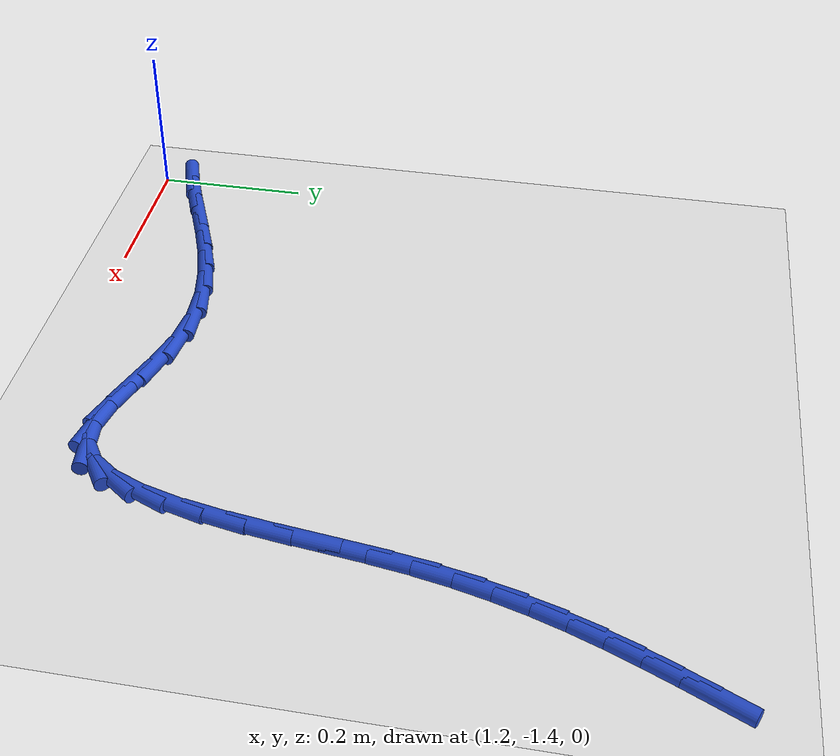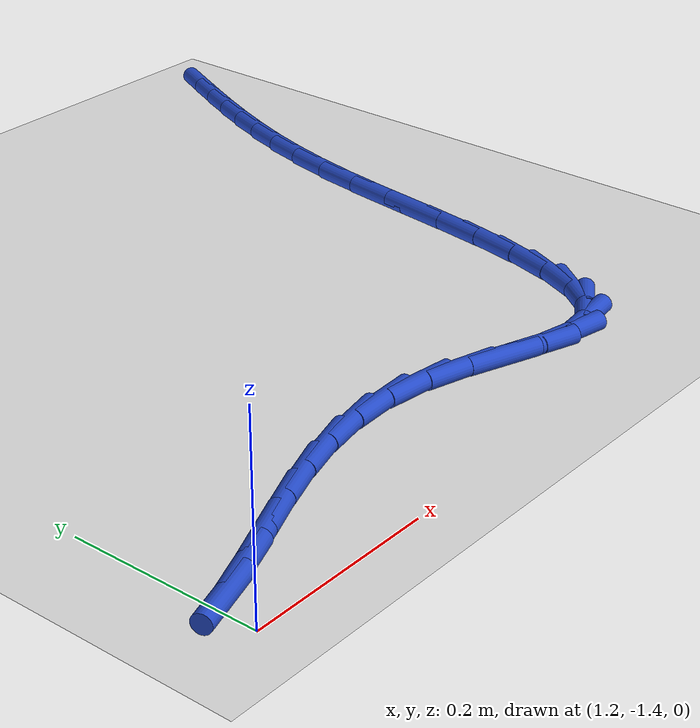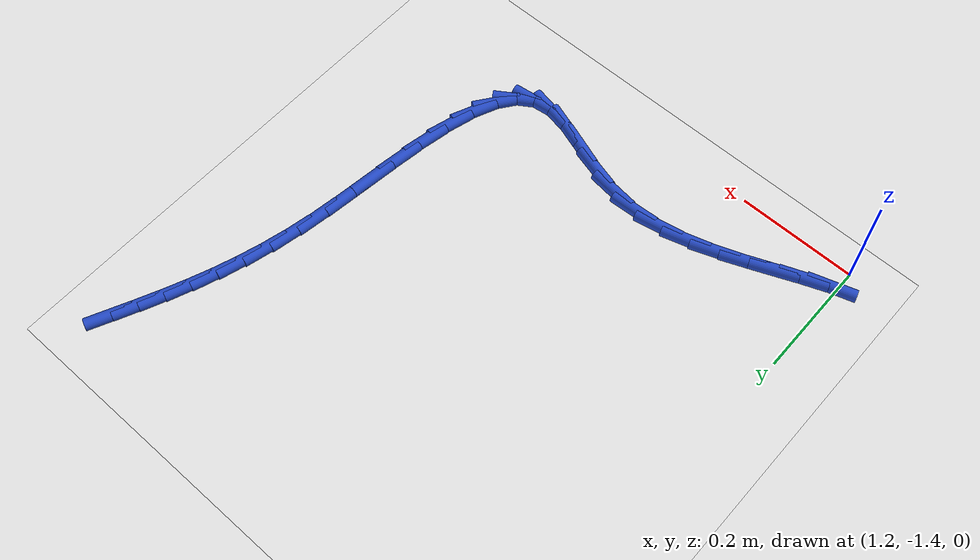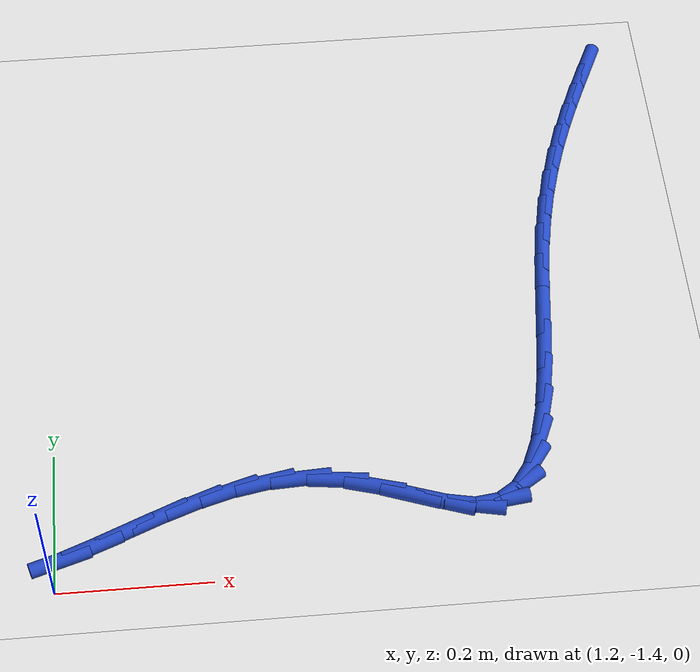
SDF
<sdf version="1.6">
 <world name="default">
  <model name="ground_plane">
   <static>1</static>
   <link name="link">
    <collision name="collision">
     <geometry><plane><normal>0 0 1</normal><size>100 100</size></plane></geometry>
     <surface><friction><ode><mu>100</mu><mu2>50</mu2></ode></friction></surface>
    </collision>
    <visual name="visual">
     <cast_shadows>0</cast_shadows>
     <geometry><plane><normal>0 0 1</normal><size>100 100</size></plane></geometry>
     <material>
      <script><uri>file://media/materials/scripts/gazebo.material</uri><name>Gazebo/WhiteGlow</name></script>
     </material>
    </visual>
   </link>
  </model>
  <model name="line">
   <link name="link_105">
    <pose>1.9931286481541601 -0.5921658225265114 0.01 0 1.57 1.1367173516193283</pose>
    <collision name="collision">
     <geometry><cylinder><radius>0.01</radius><length>0.08</length></cylinder></geometry>
    </collision>
    <visual name="visual">
     <material>
      <script><name>Gazebo/Blue</name><uri>file://media/materials/scripts/gazebo.material</uri></script>
     </material>
     <geometry><cylinder><radius>0.01</radius><length>0.08</length></cylinder></geometry>
    </visual>
   </link>
   <link name="link_106">
    <pose>1.975497254566834 -0.6301999904116558 0.01 0 1.57 1.1508856920942594</pose>
    <collision name="collision">
     <geometry><cylinder><radius>0.01</radius><length>0.08</length></cylinder></geometry>
    </collision>
    <visual name="visual">
     <material>
      <script><name>Gazebo/Blue</name><uri>file://media/materials/scripts/gazebo.material</uri></script>
     </material>
     <geometry><cylinder><radius>0.01</radius><length>0.08</length></cylinder></geometry>
    </visual>
   </link>
   <link name="link_107">
    <pose>1.9586170577549775 -0.6680085153173835 0.01 0 1.57 1.174559866336844</pose>
    <collision name="collision">
     <geometry><cylinder><radius>0.01</radius><length>0.08</length></cylinder></geometry>
    </collision>
    <visual name="visual">
     <material>
      <script><name>Gazebo/Blue</name><uri>file://media/materials/scripts/gazebo.material</uri></script>
     </material>
     <geometry><cylinder><radius>0.01</radius><length>0.08</length></cylinder></geometry>
    </visual>
   </link>
   <link name="link_108">
    <pose>1.9426364973639414 -0.7062062617686775 0.01 0 1.57 1.2068670798294112</pose>
    <collision name="collision">
     <geometry><cylinder><radius>0.01</radius><length>0.08</length></cylinder></geometry>
    </collision>
    <visual name="visual">
     <material>
      <script><name>Gazebo/Blue</name><uri>file://media/materials/scripts/gazebo.material</uri></script>
     </material>
     <geometry><cylinder><radius>0.01</radius><length>0.08</length></cylinder></geometry>
    </visual>
   </link>
   <link name="link_109">
    <pose>1.9277040201119364 -0.7454098724250724 0.01 0 1.57 1.2462433965528794</pose>
    <collision name="collision">
     <geometry><cylinder><radius>0.01</radius><length>0.08</length></cylinder></geometry>
    </collision>
    <visual name="visual">
     <material>
      <script><name>Gazebo/Blue</name><uri>file://media/materials/scripts/gazebo.material</uri></script>
     </material>
     <geometry><cylinder><radius>0.01</radius><length>0.08</length></cylinder></geometry>
    </visual>
   </link>
   <link name="link_110">
    <pose>1.9139680727171726 -0.7862359899460993 0.01 0 1.57 1.2906383329548197</pose>
    <collision name="collision">
     <geometry><cylinder><radius>0.01</radius><length>0.08</length></cylinder></geometry>
    </collision>
    <visual name="visual">
     <material>
      <script><name>Gazebo/Blue</name><uri>file://media/materials/scripts/gazebo.material</uri></script>
     </material>
     <geometry><cylinder><radius>0.01</radius><length>0.08</length></cylinder></geometry>
    </visual>
   </link>
   <link name="link_111">
    <pose>1.9015771018978596 -0.8293012569912924 0.01 0 1.57 1.3377959567780278</pose>
    <collision name="collision">
     <geometry><cylinder><radius>0.01</radius><length>0.08</length></cylinder></geometry>
    </collision>
    <visual name="visual">
     <material>
      <script><name>Gazebo/Blue</name><uri>file://media/materials/scripts/gazebo.material</uri></script>
     </material>
     <geometry><cylinder><radius>0.01</radius><length>0.08</length></cylinder></geometry>
    </visual>
   </link>
   <link name="link_112">
    <pose>1.890679554372208 -0.875222316220185 0.01 0 1.57 1.3855578351796385</pose>
    <collision name="collision">
     <geometry><cylinder><radius>0.01</radius><length>0.08</length></cylinder></geometry>
    </collision>
    <visual name="visual">
     <material>
      <script><name>Gazebo/Blue</name><uri>file://media/materials/scripts/gazebo.material</uri></script>
     </material>
     <geometry><cylinder><radius>0.01</radius><length>0.08</length></cylinder></geometry>
    </visual>
   </link>
   <link name="link_113">
    <pose>1.881423872641485 -0.9246158000600668 0.01 0 1.57 1.4274538944313124</pose>
    <collision name="collision">
     <geometry><cylinder><radius>0.01</radius><length>0.08</length></cylinder></geometry>
    </collision>
    <visual name="visual">
     <material>
      <script><name>Gazebo/Blue</name><uri>file://media/materials/scripts/gazebo.material</uri></script>
     </material>
     <geometry><cylinder><radius>0.01</radius><length>0.08</length></cylinder></geometry>
    </visual>
   </link>
   <link name="link_114">
    <pose>1.8737704656949628 -0.977642085148311 0.01 0 1.57 1.4484611724034604</pose>
    <collision name="collision">
     <geometry><cylinder><radius>0.01</radius><length>0.08</length></cylinder></geometry>
    </collision>
    <visual name="visual">
     <material>
      <script><name>Gazebo/Blue</name><uri>file://media/materials/scripts/gazebo.material</uri></script>
     </material>
     <geometry><cylinder><radius>0.01</radius><length>0.08</length></cylinder></geometry>
    </visual>
   </link>
   <link name="link_115">
    <pose>1.8669902577652049 -1.0327885409600348 0.01 0 1.57 1.4487047729486515</pose>
    <collision name="collision">
     <geometry><cylinder><radius>0.01</radius><length>0.08</length></cylinder></geometry>
    </collision>
    <visual name="visual">
     <material>
      <script><name>Gazebo/Blue</name><uri>file://media/materials/scripts/gazebo.material</uri></script>
     </material>
     <geometry><cylinder><radius>0.01</radius><length>0.08</length></cylinder></geometry>
    </visual>
   </link>
   <link name="link_116">
    <pose>1.860196179506628 -1.0881591718774257 0.01 0 1.57 1.4284656932392459</pose>
    <collision name="collision">
     <geometry><cylinder><radius>0.01</radius><length>0.08</length></cylinder></geometry>
    </collision>
    <visual name="visual">
     <material>
      <script><name>Gazebo/Blue</name><uri>file://media/materials/scripts/gazebo.material</uri></script>
     </material>
     <geometry><cylinder><radius>0.01</radius><length>0.08</length></cylinder></geometry>
    </visual>
   </link>
   <link name="link_117">
    <pose>1.8525011615736482 -1.141857982282674 0.01 0 1.57 1.3838404599639171</pose>
    <collision name="collision">
     <geometry><cylinder><radius>0.01</radius><length>0.08</length></cylinder></geometry>
    </collision>
    <visual name="visual">
     <material>
      <script><name>Gazebo/Blue</name><uri>file://media/materials/scripts/gazebo.material</uri></script>
     </material>
     <geometry><cylinder><radius>0.01</radius><length>0.08</length></cylinder></geometry>
    </visual>
   </link>
   <link name="link_118">
    <pose>1.8430181346206813 -1.1919889765579685 0.01 0 1.57 1.305041402375887</pose>
    <collision name="collision">
     <geometry><cylinder><radius>0.01</radius><length>0.08</length></cylinder></geometry>
    </collision>
    <visual name="visual">
     <material>
      <script><name>Gazebo/Blue</name><uri>file://media/materials/scripts/gazebo.material</uri></script>
     </material>
     <geometry><cylinder><radius>0.01</radius><length>0.08</length></cylinder></geometry>
    </visual>
   </link>
   <link name="link_119">
    <pose>1.8308600293021446 -1.2366561590854996 0.01 0 1.57 1.172003325556206</pose>
    <collision name="collision">
     <geometry><cylinder><radius>0.01</radius><length>0.08</length></cylinder></geometry>
    </collision>
    <visual name="visual">
     <material>
      <script><name>Gazebo/Blue</name><uri>file://media/materials/scripts/gazebo.material</uri></script>
     </material>
     <geometry><cylinder><radius>0.01</radius><length>0.08</length></cylinder></geometry>
    </visual>
   </link>
   <link name="link_120">
    <pose>1.8151397762724546 -1.2739635342474576 0.01 0 1.57 0.9474230164833984</pose>
    <collision name="collision">
     <geometry><cylinder><radius>0.01</radius><length>0.08</length></cylinder></geometry>
    </collision>
    <visual name="visual">
     <material>
      <script><name>Gazebo/Blue</name><uri>file://media/materials/scripts/gazebo.material</uri></script>
     </material>
     <geometry><cylinder><radius>0.01</radius><length>0.08</length></cylinder></geometry>
    </visual>
   </link>
   <link name="link_121">
    <pose>1.794970306186028 -1.3020151064260295 0.01 0 1.57 0.5851726504949478</pose>
    <collision name="collision">
     <geometry><cylinder><radius>0.01</radius><length>0.08</length></cylinder></geometry>
    </collision>
    <visual name="visual">
     <material>
      <script><name>Gazebo/Blue</name><uri>file://media/materials/scripts/gazebo.material</uri></script>
     </material>
     <geometry><cylinder><radius>0.01</radius><length>0.08</length></cylinder></geometry>
    </visual>
   </link>
   <link name="link_122">
    <pose>1.7694645496972814 -1.318914880003406 0.01 0 1.57 0.12445242362076123</pose>
    <collision name="collision">
     <geometry><cylinder><radius>0.01</radius><length>0.08</length></cylinder></geometry>
    </collision>
    <visual name="visual">
     <material>
      <script><name>Gazebo/Blue</name><uri>file://media/materials/scripts/gazebo.material</uri></script>
     </material>
     <geometry><cylinder><radius>0.01</radius><length>0.08</length></cylinder></geometry>
    </visual>
   </link>
   <link name="link_123">
    <pose>1.7377739859226728 -1.3228793363391889 0.01 0 1.57 -0.200181198032541</pose>
    <collision name="collision">
     <geometry><cylinder><radius>0.01</radius><length>0.08</length></cylinder></geometry>
    </collision>
    <visual name="visual">
     <material>
      <script><name>Gazebo/Blue</name><uri>file://media/materials/scripts/gazebo.material</uri></script>
     </material>
     <geometry><cylinder><radius>0.01</radius><length>0.08</length></cylinder></geometry>
    </visual>
   </link>
   <link name="link_124">
    <pose>1.7001172948835093 -1.3152388432027422 0.01 0 1.57 -0.33028567664919845</pose>
    <collision name="collision">
     <geometry><cylinder><radius>0.01</radius><length>0.08</length></cylinder></geometry>
    </collision>
    <visual name="visual">
     <material>
      <script><name>Gazebo/Blue</name><uri>file://media/materials/scripts/gazebo.material</uri></script>
     </material>
     <geometry><cylinder><radius>0.01</radius><length>0.08</length></cylinder></geometry>
    </visual>
   </link>
   <link name="link_125">
    <pose>1.6578915123358329 -1.3007619831284174 0.01 0 1.57 -0.34644932131385475</pose>
    <collision name="collision">
     <geometry><cylinder><radius>0.01</radius><length>0.08</length></cylinder></geometry>
    </collision>
    <visual name="visual">
     <material>
      <script><name>Gazebo/Blue</name><uri>file://media/materials/scripts/gazebo.material</uri></script>
     </material>
     <geometry><cylinder><radius>0.01</radius><length>0.08</length></cylinder></geometry>
    </visual>
   </link>
   <link name="link_126">
    <pose>1.6125545219003377 -1.284394880983916 0.01 0 1.57 -0.27604376772454353</pose>
    <collision name="collision">
     <geometry><cylinder><radius>0.01</radius><length>0.08</length></cylinder></geometry>
    </collision>
    <visual name="visual">
     <material>
      <script><name>Gazebo/Blue</name><uri>file://media/materials/scripts/gazebo.material</uri></script>
     </material>
     <geometry><cylinder><radius>0.01</radius><length>0.08</length></cylinder></geometry>
    </visual>
   </link>
   <link name="link_127">
    <pose>1.5655642071977183 -1.2710836616369405 0.01 0 1.57 -0.12078740658803738</pose>
    <collision name="collision">
     <geometry><cylinder><radius>0.01</radius><length>0.08</length></cylinder></geometry>
    </collision>
    <visual name="visual">
     <material>
      <script><name>Gazebo/Blue</name><uri>file://media/materials/scripts/gazebo.material</uri></script>
     </material>
     <geometry><cylinder><radius>0.01</radius><length>0.08</length></cylinder></geometry>
    </visual>
   </link>
   <link name="link_128">
    <pose>1.518296709242475 -1.265346414592049 0.01 0 1.57 0.05029705700655284</pose>
    <collision name="collision">
     <geometry><cylinder><radius>0.01</radius><length>0.08</length></cylinder></geometry>
    </collision>
    <visual name="visual">
     <material>
      <script><name>Gazebo/Blue</name><uri>file://media/materials/scripts/gazebo.material</uri></script>
     </material>
     <geometry><cylinder><radius>0.01</radius><length>0.08</length></cylinder></geometry>
    </visual>
   </link>
   <link name="link_129">
    <pose>1.4713657467661545 -1.267708896420571 0.01 0 1.57 0.1877252016706743</pose>
    <collision name="collision">
     <geometry><cylinder><radius>0.01</radius><length>0.08</length></cylinder></geometry>
    </collision>
    <visual name="visual">
     <material>
      <script><name>Gazebo/Blue</name><uri>file://media/materials/scripts/gazebo.material</uri></script>
     </material>
     <geometry><cylinder><radius>0.01</radius><length>0.08</length></cylinder></geometry>
    </visual>
   </link>
   <link name="link_130">
    <pose>1.4249697710529101 -1.2765223654618352 0.01 0 1.57 0.2893231796785826</pose>
    <collision name="collision">
     <geometry><cylinder><radius>0.01</radius><length>0.08</length></cylinder></geometry>
    </collision>
    <visual name="visual">
     <material>
      <script><name>Gazebo/Blue</name><uri>file://media/materials/scripts/gazebo.material</uri></script>
     </material>
     <geometry><cylinder><radius>0.01</radius><length>0.08</length></cylinder></geometry>
    </visual>
   </link>
   <link name="link_131">
    <pose>1.3793030628193415 -1.2901162413778782 0.01 0 1.57 0.35730062820029046</pose>
    <collision name="collision">
     <geometry><cylinder><radius>0.01</radius><length>0.08</length></cylinder></geometry>
    </collision>
    <visual name="visual">
     <material>
      <script><name>Gazebo/Blue</name><uri>file://media/materials/scripts/gazebo.material</uri></script>
     </material>
     <geometry><cylinder><radius>0.01</radius><length>0.08</length></cylinder></geometry>
    </visual>
   </link>
   <link name="link_132">
    <pose>1.3345599027820498 -1.3068199438307366 0.01 0 1.57 0.3941215345359071</pose>
    <collision name="collision">
     <geometry><cylinder><radius>0.01</radius><length>0.08</length></cylinder></geometry>
    </collision>
    <visual name="visual">
     <material>
      <script><name>Gazebo/Blue</name><uri>file://media/materials/scripts/gazebo.material</uri></script>
     </material>
     <geometry><cylinder><radius>0.01</radius><length>0.08</length></cylinder></geometry>
    </visual>
   </link>
   <link name="link_133">
    <pose>1.2909345716576335 -1.3249628924824466 0.01 0 1.57 0.4004384264701907</pose>
    <collision name="collision">
     <geometry><cylinder><radius>0.01</radius><length>0.08</length></cylinder></geometry>
    </collision>
    <visual name="visual">
     <material>
      <script><name>Gazebo/Blue</name><uri>file://media/materials/scripts/gazebo.material</uri></script>
     </material>
     <geometry><cylinder><radius>0.01</radius><length>0.08</length></cylinder></geometry>
    </visual>
   </link>
   <link name="link_134">
    <pose>1.248621350162693 -1.3428745069950458 0.01 0 1.57 0.3738759360738634</pose>
    <collision name="collision">
     <geometry><cylinder><radius>0.01</radius><length>0.08</length></cylinder></geometry>
    </collision>
    <visual name="visual">
     <material>
      <script><name>Gazebo/Blue</name><uri>file://media/materials/scripts/gazebo.material</uri></script>
     </material>
     <geometry><cylinder><radius>0.01</radius><length>0.08</length></cylinder></geometry>
    </visual>
   </link>
   <link name="link_135">
    <pose>1.207814519013828 -1.3588842070305707 0.01 0 1.57 0.3079212565531423</pose>
    <collision name="collision">
     <geometry><cylinder><radius>0.01</radius><length>0.08</length></cylinder></geometry>
    </collision>
    <visual name="visual">
     <material>
      <script><name>Gazebo/Blue</name><uri>file://media/materials/scripts/gazebo.material</uri></script>
     </material>
     <geometry><cylinder><radius>0.01</radius><length>0.08</length></cylinder></geometry>
    </visual>
   </link>
  </model>
 </world>
</sdf>
